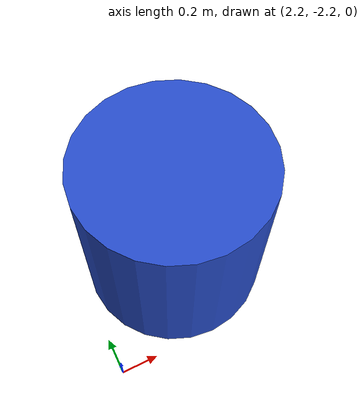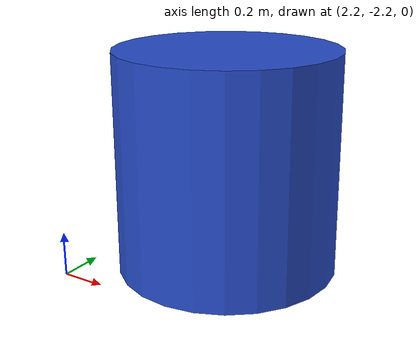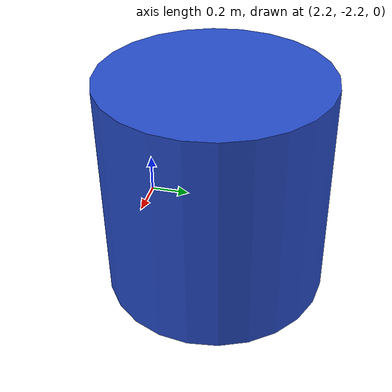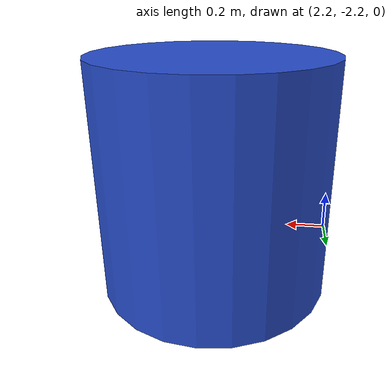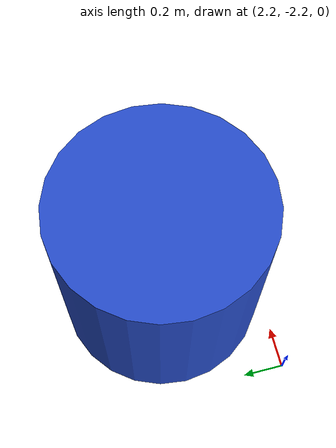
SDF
<?xml version="1.0"?>
<sdf version="1.4">
    <model name='cylinder_model'>
     <static>1</static>
      <pose frame=''>2.74807 -1.70739 0.5 0 -0 0</pose>
      <link name='link'>
        <collision name='collision'>
          <geometry>
            <cylinder>
              <radius>0.5</radius>
              <length>1</length>
            </cylinder>
          </geometry>
        </collision>
        <visual name='visual'>
          <geometry>
            <cylinder>
              <radius>0.5</radius>
              <length>1</length>
            </cylinder>
          </geometry>
          <material>
            <script>
              <uri>file://media/materials/scripts/gazebo.material</uri>
              <name>Gazebo/Blue</name>
            </script>
          </material>
        </visual>
      </link>
    </model>
</sdf>
